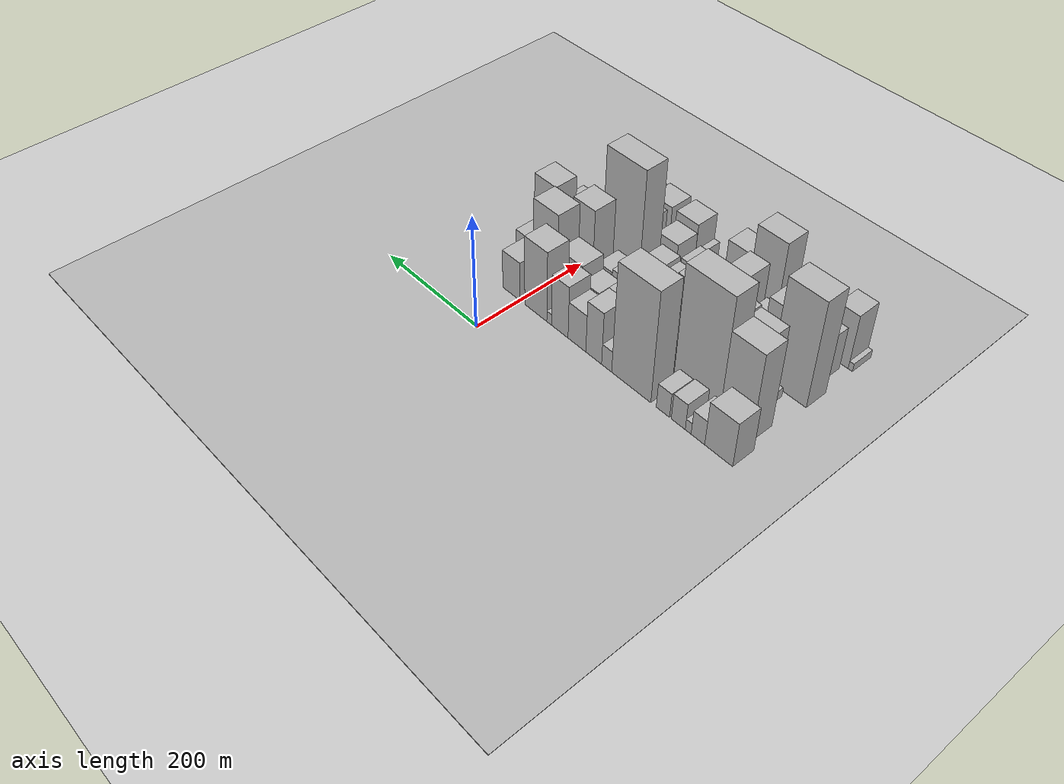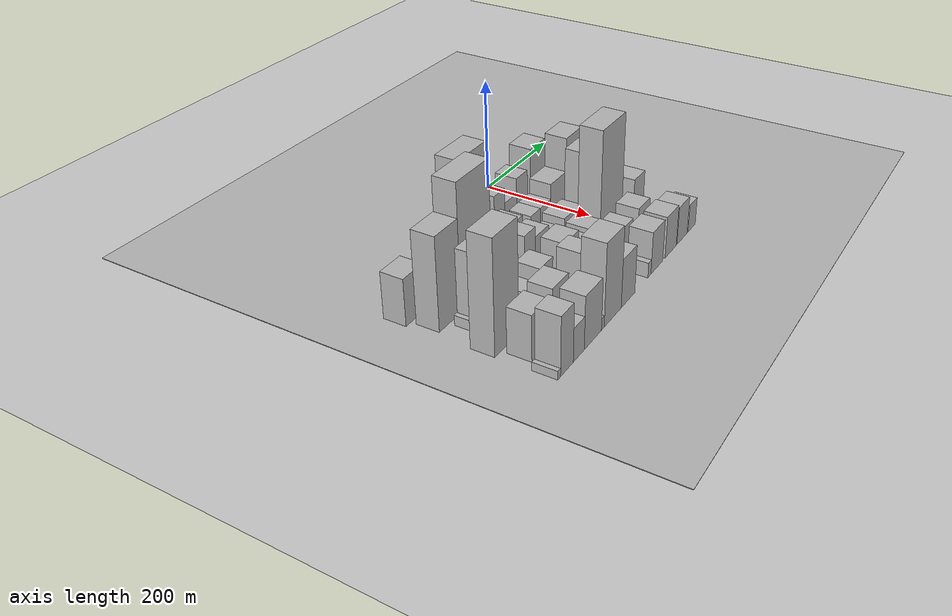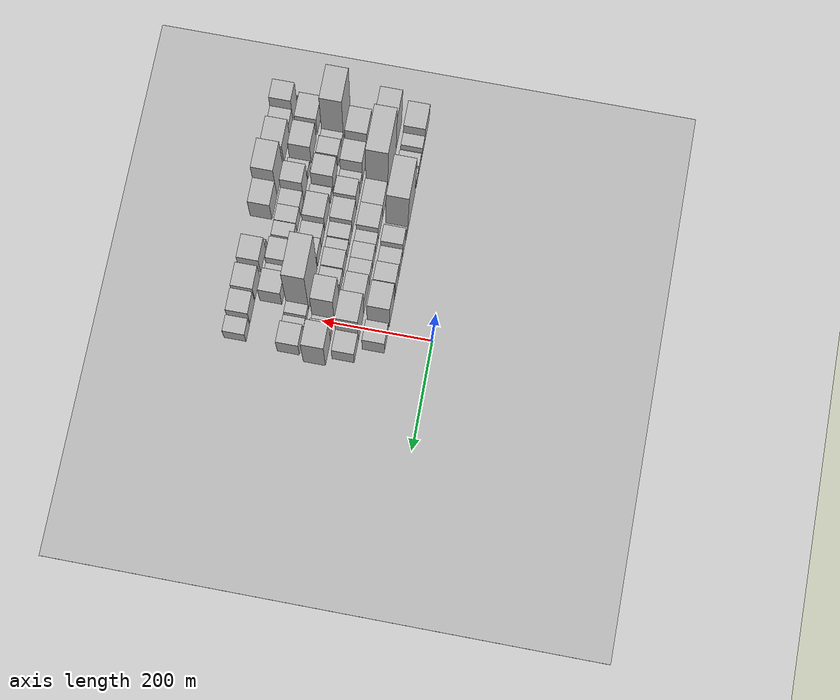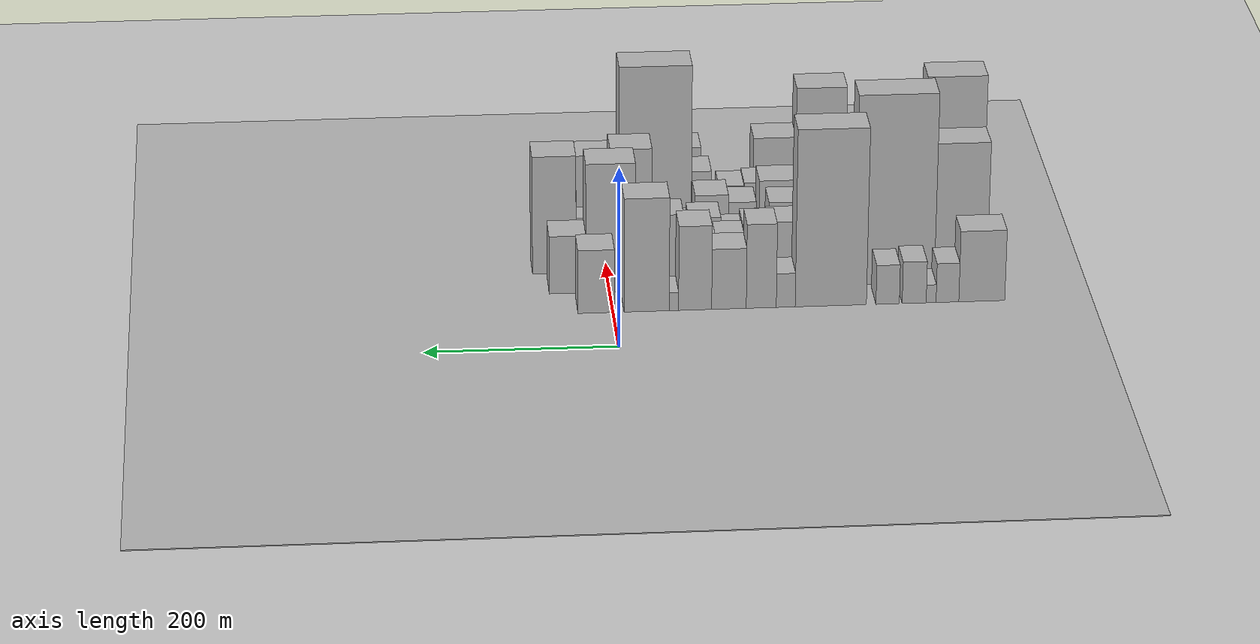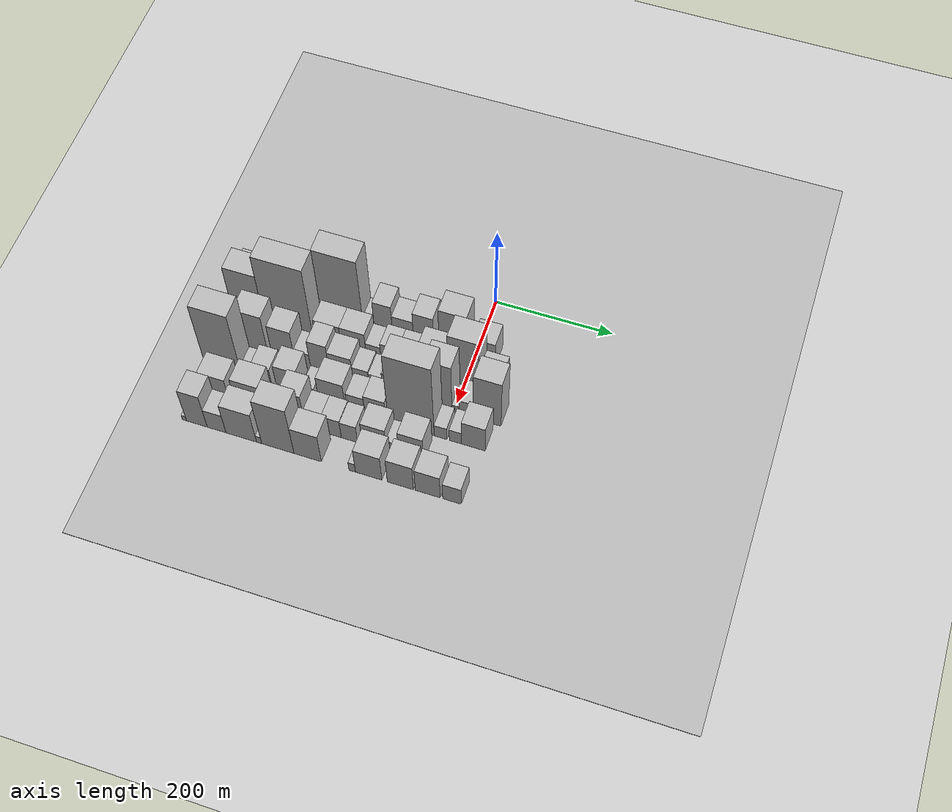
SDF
<sdf version="1.6">
 <world name="default">
  <include><name>ground_plane_1</name><uri>model://HANNAS_ground_plane</uri></include>
  <include>
   <name>ground_plane_2</name>
   <uri>model://HANNAS_ground_plane</uri>
   <pose>100 0 0  0 0 0</pose>
  </include>
  <model name="building_16">
   <static>1</static>
   <pose>100.0000 -384.2721 0 0.000000 0.000000 0.000000</pose>
   <link name="link">
    <pose>0 0 40.50 0 0 0</pose>
    <collision name="collision"><geometry><box><size>40.0000 48.1426 81.0000</size></box></geometry></collision>
    <visual name="visual">
     <cast_shadows>0</cast_shadows>
     <geometry><box><size>40.0000 48.1426 81.0000</size></box></geometry>
     <material>
      <script>
       <uri>model://HANNAS_wall/materials/scripts</uri>
       <uri>model://HANNAS_wall/materials/textures</uri>
       <name>vrc/HANNAS_wall</name>
      </script>
     </material>
    </visual>
   </link>
  </model>
  <model name="building_17">
   <static>1</static>
   <pose>100.0000 -348.2777 0 0.000000 0.000000 0.000000</pose>
   <link name="link">
    <pose>0 0 22.50 0 0 0</pose>
    <collision name="collision"><geometry><box><size>40.0000 23.8463 45.0000</size></box></geometry></collision>
    <visual name="visual">
     <cast_shadows>0</cast_shadows>
     <geometry><box><size>40.0000 23.8463 45.0000</size></box></geometry>
     <material>
      <script>
       <uri>model://HANNAS_wall/materials/scripts</uri>
       <uri>model://HANNAS_wall/materials/textures</uri>
       <name>vrc/HANNAS_wall</name>
      </script>
     </material>
    </visual>
   </link>
  </model>
  <model name="building_18">
   <static>1</static>
   <pose>100.0000 -331.1946 0 0.000000 0.000000 0.000000</pose>
   <link name="link">
    <pose>0 0 10.50 0 0 0</pose>
    <collision name="collision"><geometry><box><size>40.0000 10.3200 21.0000</size></box></geometry></collision>
    <visual name="visual">
     <cast_shadows>0</cast_shadows>
     <geometry><box><size>40.0000 10.3200 21.0000</size></box></geometry>
     <material>
      <script>
       <uri>model://HANNAS_wall/materials/scripts</uri>
       <uri>model://HANNAS_wall/materials/textures</uri>
       <name>vrc/HANNAS_wall</name>
      </script>
     </material>
    </visual>
   </link>
  </model>
  <model name="building_19">
   <static>1</static>
   <pose>100.0000 -313.4795 0 0.000000 0.000000 0.000000</pose>
   <link name="link">
    <pose>0 0 24.00 0 0 0</pose>
    <collision name="collision"><geometry><box><size>40.0000 25.1102 48.0000</size></box></geometry></collision>
    <visual name="visual">
     <cast_shadows>0</cast_shadows>
     <geometry><box><size>40.0000 25.1102 48.0000</size></box></geometry>
     <material>
      <script>
       <uri>model://HANNAS_wall/materials/scripts</uri>
       <uri>model://HANNAS_wall/materials/textures</uri>
       <name>vrc/HANNAS_wall</name>
      </script>
     </material>
    </visual>
   </link>
  </model>
  <model name="building_20">
   <static>1</static>
   <pose>100.0000 -285.6841 0 0.000000 0.000000 0.000000</pose>
   <link name="link">
    <pose>0 0 22.50 0 0 0</pose>
    <collision name="collision"><geometry><box><size>40.0000 24.4805 45.0000</size></box></geometry></collision>
    <visual name="visual">
     <cast_shadows>0</cast_shadows>
     <geometry><box><size>40.0000 24.4805 45.0000</size></box></geometry>
     <material>
      <script>
       <uri>model://HANNAS_wall/materials/scripts</uri>
       <uri>model://HANNAS_wall/materials/textures</uri>
       <name>vrc/HANNAS_wall</name>
      </script>
     </material>
    </visual>
   </link>
  </model>
  <model name="building_21">
   <static>1</static>
   <pose>100.0000 -226.2490 0 0.000000 0.000000 0.000000</pose>
   <link name="link">
    <pose>0 0 100.50 0 0 0</pose>
    <collision name="collision"><geometry><box><size>40.0000 74.3897 201.0000</size></box></geometry></collision>
    <visual name="visual">
     <cast_shadows>0</cast_shadows>
     <geometry><box><size>40.0000 74.3897 201.0000</size></box></geometry>
     <material>
      <script>
       <uri>model://HANNAS_wall/materials/scripts</uri>
       <uri>model://HANNAS_wall/materials/textures</uri>
       <name>vrc/HANNAS_wall</name>
      </script>
     </material>
    </visual>
   </link>
  </model>
  <model name="building_22">
   <static>1</static>
   <pose>100.0000 -179.1868 0 0.000000 0.000000 0.000000</pose>
   <link name="link">
    <pose>0 0 19.50 0 0 0</pose>
    <collision name="collision"><geometry><box><size>40.0000 19.7347 39.0000</size></box></geometry></collision>
    <visual name="visual">
     <cast_shadows>0</cast_shadows>
     <geometry><box><size>40.0000 19.7347 39.0000</size></box></geometry>
     <material>
      <script>
       <uri>model://HANNAS_wall/materials/scripts</uri>
       <uri>model://HANNAS_wall/materials/textures</uri>
       <name>vrc/HANNAS_wall</name>
      </script>
     </material>
    </visual>
   </link>
  </model>
  <model name="building_23">
   <static>1</static>
   <pose>100.0000 -153.6673 0 0.000000 0.000000 0.000000</pose>
   <link name="link">
    <pose>0 0 48.00 0 0 0</pose>
    <collision name="collision"><geometry><box><size>40.0000 31.3043 96.0000</size></box></geometry></collision>
    <visual name="visual">
     <cast_shadows>0</cast_shadows>
     <geometry><box><size>40.0000 31.3043 96.0000</size></box></geometry>
     <material>
      <script>
       <uri>model://HANNAS_wall/materials/scripts</uri>
       <uri>model://HANNAS_wall/materials/textures</uri>
       <name>vrc/HANNAS_wall</name>
      </script>
     </material>
    </visual>
   </link>
  </model>
  <model name="building_24">
   <static>1</static>
   <pose>100.0000 -119.9857 0 0.000000 0.000000 0.000000</pose>
   <link name="link">
    <pose>0 0 34.50 0 0 0</pose>
    <collision name="collision"><geometry><box><size>40.0000 36.0590 69.0000</size></box></geometry></collision>
    <visual name="visual">
     <cast_shadows>0</cast_shadows>
     <geometry><box><size>40.0000 36.0590 69.0000</size></box></geometry>
     <material>
      <script>
       <uri>model://HANNAS_wall/materials/scripts</uri>
       <uri>model://HANNAS_wall/materials/textures</uri>
       <name>vrc/HANNAS_wall</name>
      </script>
     </material>
    </visual>
   </link>
  </model>
  <model name="building_25">
   <static>1</static>
   <pose>100.0000 -84.7607 0 0.000000 0.000000 0.000000</pose>
   <link name="link">
    <pose>0 0 48.00 0 0 0</pose>
    <collision name="collision"><geometry><box><size>40.0000 34.3909 96.0000</size></box></geometry></collision>
    <visual name="visual">
     <cast_shadows>0</cast_shadows>
     <geometry><box><size>40.0000 34.3909 96.0000</size></box></geometry>
     <material>
      <script>
       <uri>model://HANNAS_wall/materials/scripts</uri>
       <uri>model://HANNAS_wall/materials/textures</uri>
       <name>vrc/HANNAS_wall</name>
      </script>
     </material>
    </visual>
   </link>
  </model>
  <model name="building_26">
   <static>1</static>
   <pose>100.0000 -62.7450 0 0.000000 0.000000 0.000000</pose>
   <link name="link">
    <pose>0 0 10.50 0 0 0</pose>
    <collision name="collision"><geometry><box><size>40.0000 9.6406 21.0000</size></box></geometry></collision>
    <visual name="visual">
     <cast_shadows>0</cast_shadows>
     <geometry><box><size>40.0000 9.6406 21.0000</size></box></geometry>
     <material>
      <script>
       <uri>model://HANNAS_wall/materials/scripts</uri>
       <uri>model://HANNAS_wall/materials/textures</uri>
       <name>vrc/HANNAS_wall</name>
      </script>
     </material>
    </visual>
   </link>
  </model>
  <model name="building_27">
   <static>1</static>
   <pose>100.0000 -34.4189 0 0.000000 0.000000 0.000000</pose>
   <link name="link">
    <pose>0 0 64.50 0 0 0</pose>
    <collision name="collision"><geometry><box><size>40.0000 47.0114 129.0000</size></box></geometry></collision>
    <visual name="visual">
     <cast_shadows>0</cast_shadows>
     <geometry><box><size>40.0000 47.0114 129.0000</size></box></geometry>
     <material>
      <script>
       <uri>model://HANNAS_wall/materials/scripts</uri>
       <uri>model://HANNAS_wall/materials/textures</uri>
       <name>vrc/HANNAS_wall</name>
      </script>
     </material>
    </visual>
   </link>
  </model>
  <model name="building_28">
   <static>1</static>
   <pose>100.0000 18.0639 0 0.000000 0.000000 0.000000</pose>
   <link name="link">
    <pose>0 0 36.00 0 0 0</pose>
    <collision name="collision"><geometry><box><size>40.0000 37.9542 72.0000</size></box></geometry></collision>
    <visual name="visual">
     <cast_shadows>0</cast_shadows>
     <geometry><box><size>40.0000 37.9542 72.0000</size></box></geometry>
     <material>
      <script>
       <uri>model://HANNAS_wall/materials/scripts</uri>
       <uri>model://HANNAS_wall/materials/textures</uri>
       <name>vrc/HANNAS_wall</name>
      </script>
     </material>
    </visual>
   </link>
  </model>
  <model name="building_64">
   <static>1</static>
   <pose>149.0000 -368.4921 0 0.000000 0.000000 0.000000</pose>
   <link name="link">
    <pose>0 0 79.50 0 0 0</pose>
    <collision name="collision"><geometry><box><size>40.0000 55.3758 159.0000</size></box></geometry></collision>
    <visual name="visual">
     <cast_shadows>0</cast_shadows>
     <geometry><box><size>40.0000 55.3758 159.0000</size></box></geometry>
     <material>
      <script>
       <uri>model://HANNAS_wall/materials/scripts</uri>
       <uri>model://HANNAS_wall/materials/textures</uri>
       <name>vrc/HANNAS_wall</name>
      </script>
     </material>
    </visual>
   </link>
  </model>
  <model name="building_65">
   <static>1</static>
   <pose>149.0000 -298.9910 0 0.000000 0.000000 0.000000</pose>
   <link name="link">
    <pose>0 0 108.00 0 0 0</pose>
    <collision name="collision"><geometry><box><size>40.0000 83.6264 216.0000</size></box></geometry></collision>
    <visual name="visual">
     <cast_shadows>0</cast_shadows>
     <geometry><box><size>40.0000 83.6264 216.0000</size></box></geometry>
     <material>
      <script>
       <uri>model://HANNAS_wall/materials/scripts</uri>
       <uri>model://HANNAS_wall/materials/textures</uri>
       <name>vrc/HANNAS_wall</name>
      </script>
     </material>
    </visual>
   </link>
  </model>
  <model name="building_66">
   <static>1</static>
   <pose>149.0000 -230.9438 0 0.000000 0.000000 0.000000</pose>
   <link name="link">
    <pose>0 0 37.50 0 0 0</pose>
    <collision name="collision"><geometry><box><size>40.0000 44.4682 75.0000</size></box></geometry></collision>
    <visual name="visual">
     <cast_shadows>0</cast_shadows>
     <geometry><box><size>40.0000 44.4682 75.0000</size></box></geometry>
     <material>
      <script>
       <uri>model://HANNAS_wall/materials/scripts</uri>
       <uri>model://HANNAS_wall/materials/textures</uri>
       <name>vrc/HANNAS_wall</name>
      </script>
     </material>
    </visual>
   </link>
  </model>
  <model name="building_67">
   <static>1</static>
   <pose>149.0000 -187.2051 0 0.000000 0.000000 0.000000</pose>
   <link name="link">
    <pose>0 0 37.50 0 0 0</pose>
    <collision name="collision"><geometry><box><size>40.0000 43.0090 75.0000</size></box></geometry></collision>
    <visual name="visual">
     <cast_shadows>0</cast_shadows>
     <geometry><box><size>40.0000 43.0090 75.0000</size></box></geometry>
     <material>
      <script>
       <uri>model://HANNAS_wall/materials/scripts</uri>
       <uri>model://HANNAS_wall/materials/textures</uri>
       <name>vrc/HANNAS_wall</name>
      </script>
     </material>
    </visual>
   </link>
  </model>
  <model name="building_68">
   <static>1</static>
   <pose>149.0000 -153.0070 0 0.000000 0.000000 0.000000</pose>
   <link name="link">
    <pose>0 0 24.00 0 0 0</pose>
    <collision name="collision"><geometry><box><size>40.0000 25.3873 48.0000</size></box></geometry></collision>
    <visual name="visual">
     <cast_shadows>0</cast_shadows>
     <geometry><box><size>40.0000 25.3873 48.0000</size></box></geometry>
     <material>
      <script>
       <uri>model://HANNAS_wall/materials/scripts</uri>
       <uri>model://HANNAS_wall/materials/textures</uri>
       <name>vrc/HANNAS_wall</name>
      </script>
     </material>
    </visual>
   </link>
  </model>
  <model name="building_69">
   <static>1</static>
   <pose>149.0000 -125.1310 0 0.000000 0.000000 0.000000</pose>
   <link name="link">
    <pose>0 0 30.00 0 0 0</pose>
    <collision name="collision"><geometry><box><size>40.0000 30.3646 60.0000</size></box></geometry></collision>
    <visual name="visual">
     <cast_shadows>0</cast_shadows>
     <geometry><box><size>40.0000 30.3646 60.0000</size></box></geometry>
     <material>
      <script>
       <uri>model://HANNAS_wall/materials/scripts</uri>
       <uri>model://HANNAS_wall/materials/textures</uri>
       <name>vrc/HANNAS_wall</name>
      </script>
     </material>
    </visual>
   </link>
  </model>
  <model name="building_70">
   <static>1</static>
   <pose>149.0000 -93.2545 0 0.000000 0.000000 0.000000</pose>
   <link name="link">
    <pose>0 0 30.00 0 0 0</pose>
    <collision name="collision"><geometry><box><size>40.0000 33.3884 60.0000</size></box></geometry></collision>
    <visual name="visual">
     <cast_shadows>0</cast_shadows>
     <geometry><box><size>40.0000 33.3884 60.0000</size></box></geometry>
     <material>
      <script>
       <uri>model://HANNAS_wall/materials/scripts</uri>
       <uri>model://HANNAS_wall/materials/textures</uri>
       <name>vrc/HANNAS_wall</name>
      </script>
     </material>
    </visual>
   </link>
  </model>
  <model name="building_71">
   <static>1</static>
   <pose>149.0000 -51.3370 0 0.000000 0.000000 0.000000</pose>
   <link name="link">
    <pose>0 0 43.50 0 0 0</pose>
    <collision name="collision"><geometry><box><size>40.0000 50.4467 87.0000</size></box></geometry></collision>
    <visual name="visual">
     <cast_shadows>0</cast_shadows>
     <geometry><box><size>40.0000 50.4467 87.0000</size></box></geometry>
     <material>
      <script>
       <uri>model://HANNAS_wall/materials/scripts</uri>
       <uri>model://HANNAS_wall/materials/textures</uri>
       <name>vrc/HANNAS_wall</name>
      </script>
     </material>
    </visual>
   </link>
  </model>
  <model name="building_72">
   <static>1</static>
   <pose>149.0000 -0.3029 0 0.000000 0.000000 0.000000</pose>
   <link name="link">
    <pose>0 0 73.50 0 0 0</pose>
    <collision name="collision"><geometry><box><size>40.0000 51.6215 147.0000</size></box></geometry></collision>
    <visual name="visual">
     <cast_shadows>0</cast_shadows>
     <geometry><box><size>40.0000 51.6215 147.0000</size></box></geometry>
     <material>
      <script>
       <uri>model://HANNAS_wall/materials/scripts</uri>
       <uri>model://HANNAS_wall/materials/textures</uri>
       <name>vrc/HANNAS_wall</name>
      </script>
     </material>
    </visual>
   </link>
  </model>
  <model name="building_73">
   <static>1</static>
   <pose>149.0000 44.7026 0 0.000000 0.000000 0.000000</pose>
   <link name="link">
    <pose>0 0 33.00 0 0 0</pose>
    <collision name="collision"><geometry><box><size>40.0000 38.3895 66.0000</size></box></geometry></collision>
    <visual name="visual">
     <cast_shadows>0</cast_shadows>
     <geometry><box><size>40.0000 38.3895 66.0000</size></box></geometry>
     <material>
      <script>
       <uri>model://HANNAS_wall/materials/scripts</uri>
       <uri>model://HANNAS_wall/materials/textures</uri>
       <name>vrc/HANNAS_wall</name>
      </script>
     </material>
    </visual>
   </link>
  </model>
  <model name="building_109">
   <static>1</static>
   <pose>198.0000 -367.1274 0 0.000000 0.000000 0.000000</pose>
   <link name="link">
    <pose>0 0 9.00 0 0 0</pose>
    <collision name="collision"><geometry><box><size>40.0000 7.8047 18.0000</size></box></geometry></collision>
    <visual name="visual">
     <cast_shadows>0</cast_shadows>
     <geometry><box><size>40.0000 7.8047 18.0000</size></box></geometry>
     <material>
      <script>
       <uri>model://HANNAS_wall/materials/scripts</uri>
       <uri>model://HANNAS_wall/materials/textures</uri>
       <name>vrc/HANNAS_wall</name>
      </script>
     </material>
    </visual>
   </link>
  </model>
  <model name="building_110">
   <static>1</static>
   <pose>198.0000 -339.6247 0 0.000000 0.000000 0.000000</pose>
   <link name="link">
    <pose>0 0 63.00 0 0 0</pose>
    <collision name="collision"><geometry><box><size>40.0000 47.2006 126.0000</size></box></geometry></collision>
    <visual name="visual">
     <cast_shadows>0</cast_shadows>
     <geometry><box><size>40.0000 47.2006 126.0000</size></box></geometry>
     <material>
      <script>
       <uri>model://HANNAS_wall/materials/scripts</uri>
       <uri>model://HANNAS_wall/materials/textures</uri>
       <name>vrc/HANNAS_wall</name>
      </script>
     </material>
    </visual>
   </link>
  </model>
  <model name="building_111">
   <static>1</static>
   <pose>198.0000 -289.2294 0 0.000000 0.000000 0.000000</pose>
   <link name="link">
    <pose>0 0 52.50 0 0 0</pose>
    <collision name="collision"><geometry><box><size>40.0000 39.5901 105.0000</size></box></geometry></collision>
    <visual name="visual">
     <cast_shadows>0</cast_shadows>
     <geometry><box><size>40.0000 39.5901 105.0000</size></box></geometry>
     <material>
      <script>
       <uri>model://HANNAS_wall/materials/scripts</uri>
       <uri>model://HANNAS_wall/materials/textures</uri>
       <name>vrc/HANNAS_wall</name>
      </script>
     </material>
    </visual>
   </link>
  </model>
  <model name="building_112">
   <static>1</static>
   <pose>198.0000 -256.1361 0 0.000000 0.000000 0.000000</pose>
   <link name="link">
    <pose>0 0 25.50 0 0 0</pose>
    <collision name="collision"><geometry><box><size>40.0000 26.5964 51.0000</size></box></geometry></collision>
    <visual name="visual">
     <cast_shadows>0</cast_shadows>
     <geometry><box><size>40.0000 26.5964 51.0000</size></box></geometry>
     <material>
      <script>
       <uri>model://HANNAS_wall/materials/scripts</uri>
       <uri>model://HANNAS_wall/materials/textures</uri>
       <name>vrc/HANNAS_wall</name>
      </script>
     </material>
    </visual>
   </link>
  </model>
  <model name="building_113">
   <static>1</static>
   <pose>198.0000 -226.6504 0 0.000000 0.000000 0.000000</pose>
   <link name="link">
    <pose>0 0 46.50 0 0 0</pose>
    <collision name="collision"><geometry><box><size>40.0000 32.3749 93.0000</size></box></geometry></collision>
    <visual name="visual">
     <cast_shadows>0</cast_shadows>
     <geometry><box><size>40.0000 32.3749 93.0000</size></box></geometry>
     <material>
      <script>
       <uri>model://HANNAS_wall/materials/scripts</uri>
       <uri>model://HANNAS_wall/materials/textures</uri>
       <name>vrc/HANNAS_wall</name>
      </script>
     </material>
    </visual>
   </link>
  </model>
  <model name="building_114">
   <static>1</static>
   <pose>198.0000 -190.4907 0 0.000000 0.000000 0.000000</pose>
   <link name="link">
    <pose>0 0 37.50 0 0 0</pose>
    <collision name="collision"><geometry><box><size>40.0000 39.9445 75.0000</size></box></geometry></collision>
    <visual name="visual">
     <cast_shadows>0</cast_shadows>
     <geometry><box><size>40.0000 39.9445 75.0000</size></box></geometry>
     <material>
      <script>
       <uri>model://HANNAS_wall/materials/scripts</uri>
       <uri>model://HANNAS_wall/materials/textures</uri>
       <name>vrc/HANNAS_wall</name>
      </script>
     </material>
    </visual>
   </link>
  </model>
  <model name="building_115">
   <static>1</static>
   <pose>198.0000 -156.7325 0 0.000000 0.000000 0.000000</pose>
   <link name="link">
    <pose>0 0 25.50 0 0 0</pose>
    <collision name="collision"><geometry><box><size>40.0000 27.5718 51.0000</size></box></geometry></collision>
    <visual name="visual">
     <cast_shadows>0</cast_shadows>
     <geometry><box><size>40.0000 27.5718 51.0000</size></box></geometry>
     <material>
      <script>
       <uri>model://HANNAS_wall/materials/scripts</uri>
       <uri>model://HANNAS_wall/materials/textures</uri>
       <name>vrc/HANNAS_wall</name>
      </script>
     </material>
    </visual>
   </link>
  </model>
  <model name="building_116">
   <static>1</static>
   <pose>198.0000 -131.4376 0 0.000000 0.000000 0.000000</pose>
   <link name="link">
    <pose>0 0 22.50 0 0 0</pose>
    <collision name="collision"><geometry><box><size>40.0000 23.0181 45.0000</size></box></geometry></collision>
    <visual name="visual">
     <cast_shadows>0</cast_shadows>
     <geometry><box><size>40.0000 23.0181 45.0000</size></box></geometry>
     <material>
      <script>
       <uri>model://HANNAS_wall/materials/scripts</uri>
       <uri>model://HANNAS_wall/materials/textures</uri>
       <name>vrc/HANNAS_wall</name>
      </script>
     </material>
    </visual>
   </link>
  </model>
  <model name="building_117">
   <static>1</static>
   <pose>198.0000 -103.0411 0 0.000000 0.000000 0.000000</pose>
   <link name="link">
    <pose>0 0 30.00 0 0 0</pose>
    <collision name="collision"><geometry><box><size>40.0000 33.7749 60.0000</size></box></geometry></collision>
    <visual name="visual">
     <cast_shadows>0</cast_shadows>
     <geometry><box><size>40.0000 33.7749 60.0000</size></box></geometry>
     <material>
      <script>
       <uri>model://HANNAS_wall/materials/scripts</uri>
       <uri>model://HANNAS_wall/materials/textures</uri>
       <name>vrc/HANNAS_wall</name>
      </script>
     </material>
    </visual>
   </link>
  </model>
  <model name="building_118">
   <static>1</static>
   <pose>198.0000 -71.6369 0 0.000000 0.000000 0.000000</pose>
   <link name="link">
    <pose>0 0 27.00 0 0 0</pose>
    <collision name="collision"><geometry><box><size>40.0000 29.0335 54.0000</size></box></geometry></collision>
    <visual name="visual">
     <cast_shadows>0</cast_shadows>
     <geometry><box><size>40.0000 29.0335 54.0000</size></box></geometry>
     <material>
      <script>
       <uri>model://HANNAS_wall/materials/scripts</uri>
       <uri>model://HANNAS_wall/materials/textures</uri>
       <name>vrc/HANNAS_wall</name>
      </script>
     </material>
    </visual>
   </link>
  </model>
  <model name="building_119">
   <static>1</static>
   <pose>198.0000 -25.1621 0 0.000000 0.000000 0.000000</pose>
   <link name="link">
    <pose>0 0 70.50 0 0 0</pose>
    <collision name="collision"><geometry><box><size>40.0000 43.9161 141.0000</size></box></geometry></collision>
    <visual name="visual">
     <cast_shadows>0</cast_shadows>
     <geometry><box><size>40.0000 43.9161 141.0000</size></box></geometry>
     <material>
      <script>
       <uri>model://HANNAS_wall/materials/scripts</uri>
       <uri>model://HANNAS_wall/materials/textures</uri>
       <name>vrc/HANNAS_wall</name>
      </script>
     </material>
    </visual>
   </link>
  </model>
  <model name="building_120">
   <static>1</static>
   <pose>198.0000 2.7685 0 0.000000 0.000000 0.000000</pose>
   <link name="link">
    <pose>0 0 12.00 0 0 0</pose>
    <collision name="collision"><geometry><box><size>40.0000 11.9451 24.0000</size></box></geometry></collision>
    <visual name="visual">
     <cast_shadows>0</cast_shadows>
     <geometry><box><size>40.0000 11.9451 24.0000</size></box></geometry>
     <material>
      <script>
       <uri>model://HANNAS_wall/materials/scripts</uri>
       <uri>model://HANNAS_wall/materials/textures</uri>
       <name>vrc/HANNAS_wall</name>
      </script>
     </material>
    </visual>
   </link>
  </model>
  <model name="building_121">
   <static>1</static>
   <pose>198.0000 20.6902 0 0.000000 0.000000 0.000000</pose>
   <link name="link">
    <pose>0 0 22.50 0 0 0</pose>
    <collision name="collision"><geometry><box><size>40.0000 23.8984 45.0000</size></box></geometry></collision>
    <visual name="visual">
     <cast_shadows>0</cast_shadows>
     <geometry><box><size>40.0000 23.8984 45.0000</size></box></geometry>
     <material>
      <script>
       <uri>model://HANNAS_wall/materials/scripts</uri>
       <uri>model://HANNAS_wall/materials/textures</uri>
       <name>vrc/HANNAS_wall</name>
      </script>
     </material>
    </visual>
   </link>
  </model>
  <model name="building_122">
   <static>1</static>
   <pose>198.0000 55.6377 0 0.000000 0.000000 0.000000</pose>
   <link name="link">
    <pose>0 0 67.50 0 0 0</pose>
    <collision name="collision"><geometry><box><size>40.0000 45.9966 135.0000</size></box></geometry></collision>
    <visual name="visual">
     <cast_shadows>0</cast_shadows>
     <geometry><box><size>40.0000 45.9966 135.0000</size></box></geometry>
     <material>
      <script>
       <uri>model://HANNAS_wall/materials/scripts</uri>
       <uri>model://HANNAS_wall/materials/textures</uri>
       <name>vrc/HANNAS_wall</name>
      </script>
     </material>
    </visual>
   </link>
  </model>
  <model name="building_158">
   <static>1</static>
   <pose>247.0000 -373.7457 0 0.000000 0.000000 0.000000</pose>
   <link name="link">
    <pose>0 0 96.00 0 0 0</pose>
    <collision name="collision"><geometry><box><size>40.0000 63.3927 192.0000</size></box></geometry></collision>
    <visual name="visual">
     <cast_shadows>0</cast_shadows>
     <geometry><box><size>40.0000 63.3927 192.0000</size></box></geometry>
     <material>
      <script>
       <uri>model://HANNAS_wall/materials/scripts</uri>
       <uri>model://HANNAS_wall/materials/textures</uri>
       <name>vrc/HANNAS_wall</name>
      </script>
     </material>
    </visual>
   </link>
  </model>
  <model name="building_159">
   <static>1</static>
   <pose>247.0000 -332.1512 0 0.000000 0.000000 0.000000</pose>
   <link name="link">
    <pose>0 0 19.50 0 0 0</pose>
    <collision name="collision"><geometry><box><size>40.0000 19.7965 39.0000</size></box></geometry></collision>
    <visual name="visual">
     <cast_shadows>0</cast_shadows>
     <geometry><box><size>40.0000 19.7965 39.0000</size></box></geometry>
     <material>
      <script>
       <uri>model://HANNAS_wall/materials/scripts</uri>
       <uri>model://HANNAS_wall/materials/textures</uri>
       <name>vrc/HANNAS_wall</name>
      </script>
     </material>
    </visual>
   </link>
  </model>
  <model name="building_160">
   <static>1</static>
   <pose>247.0000 -306.2783 0 0.000000 0.000000 0.000000</pose>
   <link name="link">
    <pose>0 0 28.50 0 0 0</pose>
    <collision name="collision"><geometry><box><size>40.0000 31.9493 57.0000</size></box></geometry></collision>
    <visual name="visual">
     <cast_shadows>0</cast_shadows>
     <geometry><box><size>40.0000 31.9493 57.0000</size></box></geometry>
     <material>
      <script>
       <uri>model://HANNAS_wall/materials/scripts</uri>
       <uri>model://HANNAS_wall/materials/textures</uri>
       <name>vrc/HANNAS_wall</name>
      </script>
     </material>
    </visual>
   </link>
  </model>
  <model name="building_161">
   <static>1</static>
   <pose>247.0000 -263.3355 0 0.000000 0.000000 0.000000</pose>
   <link name="link">
    <pose>0 0 37.50 0 0 0</pose>
    <collision name="collision"><geometry><box><size>40.0000 37.9364 75.0000</size></box></geometry></collision>
    <visual name="visual">
     <cast_shadows>0</cast_shadows>
     <geometry><box><size>40.0000 37.9364 75.0000</size></box></geometry>
     <material>
      <script>
       <uri>model://HANNAS_wall/materials/scripts</uri>
       <uri>model://HANNAS_wall/materials/textures</uri>
       <name>vrc/HANNAS_wall</name>
      </script>
     </material>
    </visual>
   </link>
  </model>
  <model name="building_162">
   <static>1</static>
   <pose>247.0000 -240.6868 0 0.000000 0.000000 0.000000</pose>
   <link name="link">
    <pose>0 0 7.50 0 0 0</pose>
    <collision name="collision"><geometry><box><size>40.0000 7.3610 15.0000</size></box></geometry></collision>
    <visual name="visual">
     <cast_shadows>0</cast_shadows>
     <geometry><box><size>40.0000 7.3610 15.0000</size></box></geometry>
     <material>
      <script>
       <uri>model://HANNAS_wall/materials/scripts</uri>
       <uri>model://HANNAS_wall/materials/textures</uri>
       <name>vrc/HANNAS_wall</name>
      </script>
     </material>
    </visual>
   </link>
  </model>
  <model name="building_163">
   <static>1</static>
   <pose>247.0000 -227.1305 0 0.000000 0.000000 0.000000</pose>
   <link name="link">
    <pose>0 0 18.00 0 0 0</pose>
    <collision name="collision"><geometry><box><size>40.0000 19.7517 36.0000</size></box></geometry></collision>
    <visual name="visual">
     <cast_shadows>0</cast_shadows>
     <geometry><box><size>40.0000 19.7517 36.0000</size></box></geometry>
     <material>
      <script>
       <uri>model://HANNAS_wall/materials/scripts</uri>
       <uri>model://HANNAS_wall/materials/textures</uri>
       <name>vrc/HANNAS_wall</name>
      </script>
     </material>
    </visual>
   </link>
  </model>
  <model name="building_164">
   <static>1</static>
   <pose>247.0000 -187.7136 0 0.000000 0.000000 0.000000</pose>
   <link name="link">
    <pose>0 0 39.00 0 0 0</pose>
    <collision name="collision"><geometry><box><size>40.0000 45.0820 78.0000</size></box></geometry></collision>
    <visual name="visual">
     <cast_shadows>0</cast_shadows>
     <geometry><box><size>40.0000 45.0820 78.0000</size></box></geometry>
     <material>
      <script>
       <uri>model://HANNAS_wall/materials/scripts</uri>
       <uri>model://HANNAS_wall/materials/textures</uri>
       <name>vrc/HANNAS_wall</name>
      </script>
     </material>
    </visual>
   </link>
  </model>
  <model name="building_165">
   <static>1</static>
   <pose>247.0000 -147.3050 0 0.000000 0.000000 0.000000</pose>
   <link name="link">
    <pose>0 0 27.00 0 0 0</pose>
    <collision name="collision"><geometry><box><size>40.0000 29.7352 54.0000</size></box></geometry></collision>
    <visual name="visual">
     <cast_shadows>0</cast_shadows>
     <geometry><box><size>40.0000 29.7352 54.0000</size></box></geometry>
     <material>
      <script>
       <uri>model://HANNAS_wall/materials/scripts</uri>
       <uri>model://HANNAS_wall/materials/textures</uri>
       <name>vrc/HANNAS_wall</name>
      </script>
     </material>
    </visual>
   </link>
  </model>
  <model name="building_166">
   <static>1</static>
   <pose>247.0000 -114.7013 0 0.000000 0.000000 0.000000</pose>
   <link name="link">
    <pose>0 0 31.50 0 0 0</pose>
    <collision name="collision"><geometry><box><size>40.0000 35.4722 63.0000</size></box></geometry></collision>
    <visual name="visual">
     <cast_shadows>0</cast_shadows>
     <geometry><box><size>40.0000 35.4722 63.0000</size></box></geometry>
     <material>
      <script>
       <uri>model://HANNAS_wall/materials/scripts</uri>
       <uri>model://HANNAS_wall/materials/textures</uri>
       <name>vrc/HANNAS_wall</name>
      </script>
     </material>
    </visual>
   </link>
  </model>
  <model name="building_167">
   <static>1</static>
   <pose>247.0000 -54.5261 0 0.000000 0.000000 0.000000</pose>
   <link name="link">
    <pose>0 0 106.50 0 0 0</pose>
    <collision name="collision"><geometry><box><size>40.0000 76.8781 213.0000</size></box></geometry></collision>
    <visual name="visual">
     <cast_shadows>0</cast_shadows>
     <geometry><box><size>40.0000 76.8781 213.0000</size></box></geometry>
     <material>
      <script>
       <uri>model://HANNAS_wall/materials/scripts</uri>
       <uri>model://HANNAS_wall/materials/textures</uri>
       <name>vrc/HANNAS_wall</name>
      </script>
     </material>
    </visual>
   </link>
  </model>
  <model name="building_168">
   <static>1</static>
   <pose>247.0000 -5.5611 0 0.000000 0.000000 0.000000</pose>
   <link name="link">
    <pose>0 0 18.00 0 0 0</pose>
    <collision name="collision"><geometry><box><size>40.0000 21.0520 36.0000</size></box></geometry></collision>
    <visual name="visual">
     <cast_shadows>0</cast_shadows>
     <geometry><box><size>40.0000 21.0520 36.0000</size></box></geometry>
     <material>
      <script>
       <uri>model://HANNAS_wall/materials/scripts</uri>
       <uri>model://HANNAS_wall/materials/textures</uri>
       <name>vrc/HANNAS_wall</name>
      </script>
     </material>
    </visual>
   </link>
  </model>
  <model name="building_169">
   <static>1</static>
   <pose>247.0000 19.1362 0 0.000000 0.000000 0.000000</pose>
   <link name="link">
    <pose>0 0 18.00 0 0 0</pose>
    <collision name="collision"><geometry><box><size>40.0000 20.3426 36.0000</size></box></geometry></collision>
    <visual name="visual">
     <cast_shadows>0</cast_shadows>
     <geometry><box><size>40.0000 20.3426 36.0000</size></box></geometry>
     <material>
      <script>
       <uri>model://HANNAS_wall/materials/scripts</uri>
       <uri>model://HANNAS_wall/materials/textures</uri>
       <name>vrc/HANNAS_wall</name>
      </script>
     </material>
    </visual>
   </link>
  </model>
  <model name="building_170">
   <static>1</static>
   <pose>247.0000 48.8560 0 0.000000 0.000000 0.000000</pose>
   <link name="link">
    <pose>0 0 36.00 0 0 0</pose>
    <collision name="collision"><geometry><box><size>40.0000 39.0970 72.0000</size></box></geometry></collision>
    <visual name="visual">
     <cast_shadows>0</cast_shadows>
     <geometry><box><size>40.0000 39.0970 72.0000</size></box></geometry>
     <material>
      <script>
       <uri>model://HANNAS_wall/materials/scripts</uri>
       <uri>model://HANNAS_wall/materials/textures</uri>
       <name>vrc/HANNAS_wall</name>
      </script>
     </material>
    </visual>
   </link>
  </model>
  <model name="building_207">
   <static>1</static>
   <pose>296.0000 -365.8236 0 0.000000 0.000000 0.000000</pose>
   <link name="link">
    <pose>0 0 39.00 0 0 0</pose>
    <collision name="collision"><geometry><box><size>40.0000 46.2455 78.0000</size></box></geometry></collision>
    <visual name="visual">
     <cast_shadows>0</cast_shadows>
     <geometry><box><size>40.0000 46.2455 78.0000</size></box></geometry>
     <material>
      <script>
       <uri>model://HANNAS_wall/materials/scripts</uri>
       <uri>model://HANNAS_wall/materials/textures</uri>
       <name>vrc/HANNAS_wall</name>
      </script>
     </material>
    </visual>
   </link>
  </model>
  <model name="building_208">
   <static>1</static>
   <pose>296.0000 -309.5665 0 0.000000 0.000000 0.000000</pose>
   <link name="link">
    <pose>0 0 43.50 0 0 0</pose>
    <collision name="collision"><geometry><box><size>40.0000 46.2688 87.0000</size></box></geometry></collision>
    <visual name="visual">
     <cast_shadows>0</cast_shadows>
     <geometry><box><size>40.0000 46.2688 87.0000</size></box></geometry>
     <material>
      <script>
       <uri>model://HANNAS_wall/materials/scripts</uri>
       <uri>model://HANNAS_wall/materials/textures</uri>
       <name>vrc/HANNAS_wall</name>
      </script>
     </material>
    </visual>
   </link>
  </model>
  <model name="building_209">
   <static>1</static>
   <pose>296.0000 -265.9965 0 0.000000 0.000000 0.000000</pose>
   <link name="link">
    <pose>0 0 19.50 0 0 0</pose>
    <collision name="collision"><geometry><box><size>40.0000 22.8713 39.0000</size></box></geometry></collision>
    <visual name="visual">
     <cast_shadows>0</cast_shadows>
     <geometry><box><size>40.0000 22.8713 39.0000</size></box></geometry>
     <material>
      <script>
       <uri>model://HANNAS_wall/materials/scripts</uri>
       <uri>model://HANNAS_wall/materials/textures</uri>
       <name>vrc/HANNAS_wall</name>
      </script>
     </material>
    </visual>
   </link>
  </model>
  <model name="building_210">
   <static>1</static>
   <pose>296.0000 -232.5227 0 0.000000 0.000000 0.000000</pose>
   <link name="link">
    <pose>0 0 49.50 0 0 0</pose>
    <collision name="collision"><geometry><box><size>40.0000 36.0762 99.0000</size></box></geometry></collision>
    <visual name="visual">
     <cast_shadows>0</cast_shadows>
     <geometry><box><size>40.0000 36.0762 99.0000</size></box></geometry>
     <material>
      <script>
       <uri>model://HANNAS_wall/materials/scripts</uri>
       <uri>model://HANNAS_wall/materials/textures</uri>
       <name>vrc/HANNAS_wall</name>
      </script>
     </material>
    </visual>
   </link>
  </model>
  <model name="building_211">
   <static>1</static>
   <pose>296.0000 -199.3762 0 0.000000 0.000000 0.000000</pose>
   <link name="link">
    <pose>0 0 27.00 0 0 0</pose>
    <collision name="collision"><geometry><box><size>40.0000 30.2170 54.0000</size></box></geometry></collision>
    <visual name="visual">
     <cast_shadows>0</cast_shadows>
     <geometry><box><size>40.0000 30.2170 54.0000</size></box></geometry>
     <material>
      <script>
       <uri>model://HANNAS_wall/materials/scripts</uri>
       <uri>model://HANNAS_wall/materials/textures</uri>
       <name>vrc/HANNAS_wall</name>
      </script>
     </material>
    </visual>
   </link>
  </model>
  <model name="building_212">
   <static>1</static>
   <pose>296.0000 -169.0251 0 0.000000 0.000000 0.000000</pose>
   <link name="link">
    <pose>0 0 27.00 0 0 0</pose>
    <collision name="collision"><geometry><box><size>40.0000 30.4851 54.0000</size></box></geometry></collision>
    <visual name="visual">
     <cast_shadows>0</cast_shadows>
     <geometry><box><size>40.0000 30.4851 54.0000</size></box></geometry>
     <material>
      <script>
       <uri>model://HANNAS_wall/materials/scripts</uri>
       <uri>model://HANNAS_wall/materials/textures</uri>
       <name>vrc/HANNAS_wall</name>
      </script>
     </material>
    </visual>
   </link>
  </model>
  <model name="building_213">
   <static>1</static>
   <pose>296.0000 -140.1931 0 0.000000 0.000000 0.000000</pose>
   <link name="link">
    <pose>0 0 25.50 0 0 0</pose>
    <collision name="collision"><geometry><box><size>40.0000 27.1789 51.0000</size></box></geometry></collision>
    <visual name="visual">
     <cast_shadows>0</cast_shadows>
     <geometry><box><size>40.0000 27.1789 51.0000</size></box></geometry>
     <material>
      <script>
       <uri>model://HANNAS_wall/materials/scripts</uri>
       <uri>model://HANNAS_wall/materials/textures</uri>
       <name>vrc/HANNAS_wall</name>
      </script>
     </material>
    </visual>
   </link>
  </model>
  <model name="building_214">
   <static>1</static>
   <pose>296.0000 -98.4318 0 0.000000 0.000000 0.000000</pose>
   <link name="link">
    <pose>0 0 34.50 0 0 0</pose>
    <collision name="collision"><geometry><box><size>40.0000 40.3436 69.0000</size></box></geometry></collision>
    <visual name="visual">
     <cast_shadows>0</cast_shadows>
     <geometry><box><size>40.0000 40.3436 69.0000</size></box></geometry>
     <material>
      <script>
       <uri>model://HANNAS_wall/materials/scripts</uri>
       <uri>model://HANNAS_wall/materials/textures</uri>
       <name>vrc/HANNAS_wall</name>
      </script>
     </material>
    </visual>
   </link>
  </model>
  <model name="building_215">
   <static>1</static>
   <pose>296.0000 -67.9985 0 0.000000 0.000000 0.000000</pose>
   <link name="link">
    <pose>0 0 18.00 0 0 0</pose>
    <collision name="collision"><geometry><box><size>40.0000 20.5231 36.0000</size></box></geometry></collision>
    <visual name="visual">
     <cast_shadows>0</cast_shadows>
     <geometry><box><size>40.0000 20.5231 36.0000</size></box></geometry>
     <material>
      <script>
       <uri>model://HANNAS_wall/materials/scripts</uri>
       <uri>model://HANNAS_wall/materials/textures</uri>
       <name>vrc/HANNAS_wall</name>
      </script>
     </material>
    </visual>
   </link>
  </model>
  <model name="building_216">
   <static>1</static>
   <pose>296.0000 -37.2171 0 0.000000 0.000000 0.000000</pose>
   <link name="link">
    <pose>0 0 37.50 0 0 0</pose>
    <collision name="collision"><geometry><box><size>40.0000 41.0396 75.0000</size></box></geometry></collision>
    <visual name="visual">
     <cast_shadows>0</cast_shadows>
     <geometry><box><size>40.0000 41.0396 75.0000</size></box></geometry>
     <material>
      <script>
       <uri>model://HANNAS_wall/materials/scripts</uri>
       <uri>model://HANNAS_wall/materials/textures</uri>
       <name>vrc/HANNAS_wall</name>
      </script>
     </material>
    </visual>
   </link>
  </model>
  <model name="building_255">
   <static>1</static>
   <pose>345.0000 -400.7184 0 0.000000 0.000000 0.000000</pose>
   <link name="link">
    <pose>0 0 7.50 0 0 0</pose>
    <collision name="collision"><geometry><box><size>40.0000 7.4019 15.0000</size></box></geometry></collision>
    <visual name="visual">
     <cast_shadows>0</cast_shadows>
     <geometry><box><size>40.0000 7.4019 15.0000</size></box></geometry>
     <material>
      <script>
       <uri>model://HANNAS_wall/materials/scripts</uri>
       <uri>model://HANNAS_wall/materials/textures</uri>
       <name>vrc/HANNAS_wall</name>
      </script>
     </material>
    </visual>
   </link>
  </model>
  <model name="building_256">
   <static>1</static>
   <pose>345.0000 -379.1298 0 0.000000 0.000000 0.000000</pose>
   <link name="link">
    <pose>0 0 49.50 0 0 0</pose>
    <collision name="collision"><geometry><box><size>40.0000 35.7753 99.0000</size></box></geometry></collision>
    <visual name="visual">
     <cast_shadows>0</cast_shadows>
     <geometry><box><size>40.0000 35.7753 99.0000</size></box></geometry>
     <material>
      <script>
       <uri>model://HANNAS_wall/materials/scripts</uri>
       <uri>model://HANNAS_wall/materials/textures</uri>
       <name>vrc/HANNAS_wall</name>
      </script>
     </material>
    </visual>
   </link>
  </model>
  <model name="building_257">
   <static>1</static>
   <pose>345.0000 -345.3256 0 0.000000 0.000000 0.000000</pose>
   <link name="link">
    <pose>0 0 28.50 0 0 0</pose>
    <collision name="collision"><geometry><box><size>40.0000 31.8331 57.0000</size></box></geometry></collision>
    <visual name="visual">
     <cast_shadows>0</cast_shadows>
     <geometry><box><size>40.0000 31.8331 57.0000</size></box></geometry>
     <material>
      <script>
       <uri>model://HANNAS_wall/materials/scripts</uri>
       <uri>model://HANNAS_wall/materials/textures</uri>
       <name>vrc/HANNAS_wall</name>
      </script>
     </material>
    </visual>
   </link>
  </model>
  <model name="building_258">
   <static>1</static>
   <pose>345.0000 -303.5461 0 0.000000 0.000000 0.000000</pose>
   <link name="link">
    <pose>0 0 45.00 0 0 0</pose>
    <collision name="collision"><geometry><box><size>40.0000 51.7259 90.0000</size></box></geometry></collision>
    <visual name="visual">
     <cast_shadows>0</cast_shadows>
     <geometry><box><size>40.0000 51.7259 90.0000</size></box></geometry>
     <material>
      <script>
       <uri>model://HANNAS_wall/materials/scripts</uri>
       <uri>model://HANNAS_wall/materials/textures</uri>
       <name>vrc/HANNAS_wall</name>
      </script>
     </material>
    </visual>
   </link>
  </model>
  <model name="building_259">
   <static>1</static>
   <pose>345.0000 -273.2544 0 0.000000 0.000000 0.000000</pose>
   <link name="link">
    <pose>0 0 10.50 0 0 0</pose>
    <collision name="collision"><geometry><box><size>40.0000 8.8574 21.0000</size></box></geometry></collision>
    <visual name="visual">
     <cast_shadows>0</cast_shadows>
     <geometry><box><size>40.0000 8.8574 21.0000</size></box></geometry>
     <material>
      <script>
       <uri>model://HANNAS_wall/materials/scripts</uri>
       <uri>model://HANNAS_wall/materials/textures</uri>
       <name>vrc/HANNAS_wall</name>
      </script>
     </material>
    </visual>
   </link>
  </model>
  <model name="building_260">
   <static>1</static>
   <pose>345.0000 -241.5630 0 0.000000 0.000000 0.000000</pose>
   <link name="link">
    <pose>0 0 70.50 0 0 0</pose>
    <collision name="collision"><geometry><box><size>40.0000 54.5254 141.0000</size></box></geometry></collision>
    <visual name="visual">
     <cast_shadows>0</cast_shadows>
     <geometry><box><size>40.0000 54.5254 141.0000</size></box></geometry>
     <material>
      <script>
       <uri>model://HANNAS_wall/materials/scripts</uri>
       <uri>model://HANNAS_wall/materials/textures</uri>
       <name>vrc/HANNAS_wall</name>
      </script>
     </material>
    </visual>
   </link>
  </model>
  <model name="building_261">
   <static>1</static>
   <pose>345.0000 -191.3598 0 0.000000 0.000000 0.000000</pose>
   <link name="link">
    <pose>0 0 42.00 0 0 0</pose>
    <collision name="collision"><geometry><box><size>40.0000 45.8811 84.0000</size></box></geometry></collision>
    <visual name="visual">
     <cast_shadows>0</cast_shadows>
     <geometry><box><size>40.0000 45.8811 84.0000</size></box></geometry>
     <material>
      <script>
       <uri>model://HANNAS_wall/materials/scripts</uri>
       <uri>model://HANNAS_wall/materials/textures</uri>
       <name>vrc/HANNAS_wall</name>
      </script>
     </material>
    </visual>
   </link>
  </model>
  <model name="building_262">
   <static>1</static>
   <pose>345.0000 -117.0344 0 0.000000 0.000000 0.000000</pose>
   <link name="link">
    <pose>0 0 13.50 0 0 0</pose>
    <collision name="collision"><geometry><box><size>40.0000 10.9232 27.0000</size></box></geometry></collision>
    <visual name="visual">
     <cast_shadows>0</cast_shadows>
     <geometry><box><size>40.0000 10.9232 27.0000</size></box></geometry>
     <material>
      <script>
       <uri>model://HANNAS_wall/materials/scripts</uri>
       <uri>model://HANNAS_wall/materials/textures</uri>
       <name>vrc/HANNAS_wall</name>
      </script>
     </material>
    </visual>
   </link>
  </model>
  <model name="building_263">
   <static>1</static>
   <pose>345.0000 -89.8178 0 0.000000 0.000000 0.000000</pose>
   <link name="link">
    <pose>0 0 37.50 0 0 0</pose>
    <collision name="collision"><geometry><box><size>40.0000 43.5100 75.0000</size></box></geometry></collision>
    <visual name="visual">
     <cast_shadows>0</cast_shadows>
     <geometry><box><size>40.0000 43.5100 75.0000</size></box></geometry>
     <material>
      <script>
       <uri>model://HANNAS_wall/materials/scripts</uri>
       <uri>model://HANNAS_wall/materials/textures</uri>
       <name>vrc/HANNAS_wall</name>
      </script>
     </material>
    </visual>
   </link>
  </model>
  <model name="building_264">
   <static>1</static>
   <pose>345.0000 -37.6045 0 0.000000 0.000000 0.000000</pose>
   <link name="link">
    <pose>0 0 37.50 0 0 0</pose>
    <collision name="collision"><geometry><box><size>40.0000 42.9166 75.0000</size></box></geometry></collision>
    <visual name="visual">
     <cast_shadows>0</cast_shadows>
     <geometry><box><size>40.0000 42.9166 75.0000</size></box></geometry>
     <material>
      <script>
       <uri>model://HANNAS_wall/materials/scripts</uri>
       <uri>model://HANNAS_wall/materials/textures</uri>
       <name>vrc/HANNAS_wall</name>
      </script>
     </material>
    </visual>
   </link>
  </model>
  <model name="building_265">
   <static>1</static>
   <pose>345.0000 7.2177 0 0.000000 0.000000 0.000000</pose>
   <link name="link">
    <pose>0 0 34.50 0 0 0</pose>
    <collision name="collision"><geometry><box><size>40.0000 40.7277 69.0000</size></box></geometry></collision>
    <visual name="visual">
     <cast_shadows>0</cast_shadows>
     <geometry><box><size>40.0000 40.7277 69.0000</size></box></geometry>
     <material>
      <script>
       <uri>model://HANNAS_wall/materials/scripts</uri>
       <uri>model://HANNAS_wall/materials/textures</uri>
       <name>vrc/HANNAS_wall</name>
      </script>
     </material>
    </visual>
   </link>
  </model>
  <model name="building_266">
   <static>1</static>
   <pose>345.0000 46.6898 0 0.000000 0.000000 0.000000</pose>
   <link name="link">
    <pose>0 0 25.50 0 0 0</pose>
    <collision name="collision"><geometry><box><size>40.0000 30.2165 51.0000</size></box></geometry></collision>
    <visual name="visual">
     <cast_shadows>0</cast_shadows>
     <geometry><box><size>40.0000 30.2165 51.0000</size></box></geometry>
     <material>
      <script>
       <uri>model://HANNAS_wall/materials/scripts</uri>
       <uri>model://HANNAS_wall/materials/textures</uri>
       <name>vrc/HANNAS_wall</name>
      </script>
     </material>
    </visual>
   </link>
  </model>
 </world>
</sdf>
